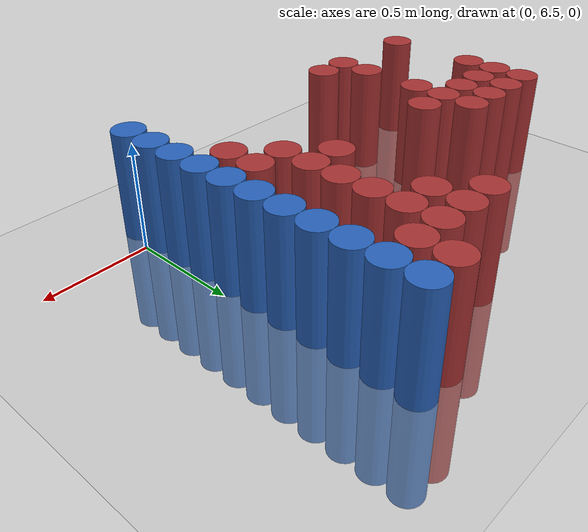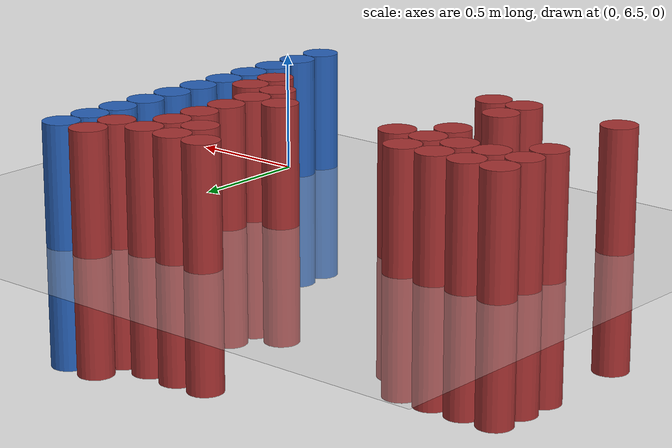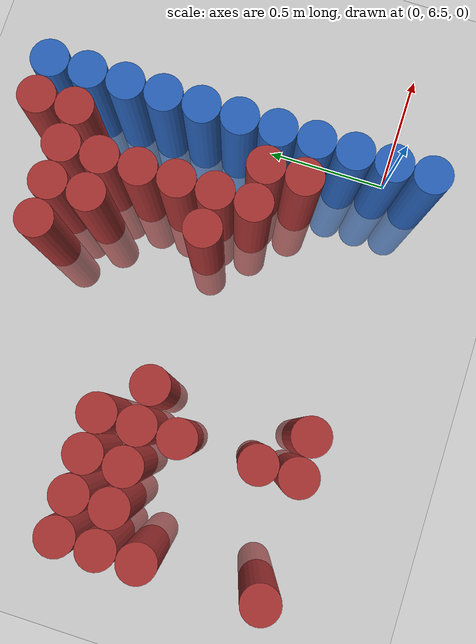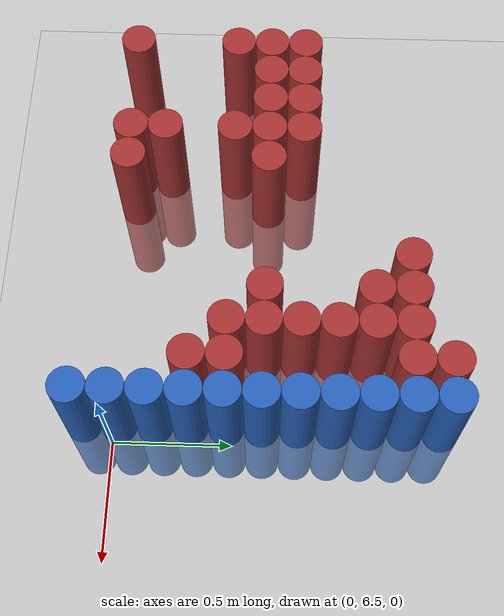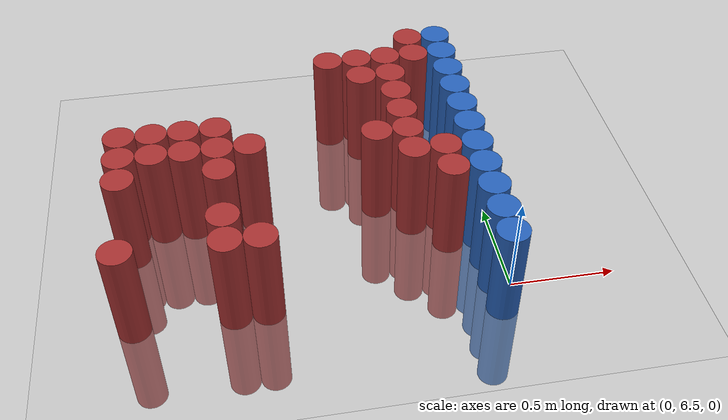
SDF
<sdf version="1.6">
 <world name="default">
  <model name="ground_plane">
   <static>1</static>
   <link name="link">
    <collision name="collision">
     <geometry><plane><normal>0 0 1</normal><size>100 100</size></plane></geometry>
     <surface><friction><ode><mu>100</mu><mu2>50</mu2></ode></friction></surface>
    </collision>
    <visual name="visual">
     <cast_shadows>0</cast_shadows>
     <geometry><plane><normal>0 0 1</normal><size>100 100</size></plane></geometry>
     <material>
      <script><uri>file://media/materials/scripts/gazebo.material</uri><name>Gazebo/Grey</name></script>
     </material>
    </visual>
   </link>
  </model>
  <model name="unit_cylinder_216">
   <static>1</static>
   <pose>-1.725000 6.525000 0.000000 0.000000 0.000000 0.000000</pose>
   <link name="link">
    <inertial>
     <mass>1</mass>
     <inertia><ixx>0.145833</ixx><ixy>0</ixy><ixz>0</ixz><iyy>0.145833</iyy><iyz>0</iyz><izz>0.125</izz></inertia>
    </inertial>
    <collision name="collision">
     <geometry><cylinder><radius>0.075000</radius><length>1</length></cylinder></geometry>
    </collision>
    <visual name="visual">
     <geometry><cylinder><radius>0.075000</radius><length>1</length></cylinder></geometry>
     <material>
      <ambient>0.648000 0.192000 0.192000 1</ambient>
      <diffuse>0.648000 0.192000 0.192000 1</diffuse>
     </material>
     <material>
      <script><name>Gazebo/Grey</name><uri>file://media/materials/scripts/gazebo.material</uri></script>
     </material>
    </visual>
    <sensor name="sensor_contact" type="contact"><contact><collision>collision</collision></contact></sensor>
   </link>
   <plugin filename="gz-sim-touchplugin-system" name="gz::sim::systems::TouchPlugin">
    <target>robot</target>
    <namespace>robot</namespace>
    <time>0.001</time>
    <enabled>true</enabled>
   </plugin>
  </model>
  <model name="unit_cylinder_217">
   <static>1</static>
   <pose>-1.725000 6.975000 0.000000 0.000000 0.000000 0.000000</pose>
   <link name="link">
    <inertial>
     <mass>1</mass>
     <inertia><ixx>0.145833</ixx><ixy>0</ixy><ixz>0</ixz><iyy>0.145833</iyy><iyz>0</iyz><izz>0.125</izz></inertia>
    </inertial>
    <collision name="collision">
     <geometry><cylinder><radius>0.075000</radius><length>1</length></cylinder></geometry>
    </collision>
    <visual name="visual">
     <geometry><cylinder><radius>0.075000</radius><length>1</length></cylinder></geometry>
     <material>
      <ambient>0.648000 0.192000 0.192000 1</ambient>
      <diffuse>0.648000 0.192000 0.192000 1</diffuse>
     </material>
     <material>
      <script><name>Gazebo/Grey</name><uri>file://media/materials/scripts/gazebo.material</uri></script>
     </material>
    </visual>
    <sensor name="sensor_contact" type="contact"><contact><collision>collision</collision></contact></sensor>
   </link>
   <plugin filename="gz-sim-touchplugin-system" name="gz::sim::systems::TouchPlugin">
    <target>robot</target>
    <namespace>robot</namespace>
    <time>0.001</time>
    <enabled>true</enabled>
   </plugin>
  </model>
  <model name="unit_cylinder_218">
   <static>1</static>
   <pose>-1.725000 7.125000 0.000000 0.000000 0.000000 0.000000</pose>
   <link name="link">
    <inertial>
     <mass>1</mass>
     <inertia><ixx>0.145833</ixx><ixy>0</ixy><ixz>0</ixz><iyy>0.145833</iyy><iyz>0</iyz><izz>0.125</izz></inertia>
    </inertial>
    <collision name="collision">
     <geometry><cylinder><radius>0.075000</radius><length>1</length></cylinder></geometry>
    </collision>
    <visual name="visual">
     <geometry><cylinder><radius>0.075000</radius><length>1</length></cylinder></geometry>
     <material>
      <ambient>0.648000 0.192000 0.192000 1</ambient>
      <diffuse>0.648000 0.192000 0.192000 1</diffuse>
     </material>
     <material>
      <script><name>Gazebo/Grey</name><uri>file://media/materials/scripts/gazebo.material</uri></script>
     </material>
    </visual>
    <sensor name="sensor_contact" type="contact"><contact><collision>collision</collision></contact></sensor>
   </link>
   <plugin filename="gz-sim-touchplugin-system" name="gz::sim::systems::TouchPlugin">
    <target>robot</target>
    <namespace>robot</namespace>
    <time>0.001</time>
    <enabled>true</enabled>
   </plugin>
  </model>
  <model name="unit_cylinder_219">
   <static>1</static>
   <pose>-1.725000 7.275000 0.000000 0.000000 0.000000 0.000000</pose>
   <link name="link">
    <inertial>
     <mass>1</mass>
     <inertia><ixx>0.145833</ixx><ixy>0</ixy><ixz>0</ixz><iyy>0.145833</iyy><iyz>0</iyz><izz>0.125</izz></inertia>
    </inertial>
    <collision name="collision">
     <geometry><cylinder><radius>0.075000</radius><length>1</length></cylinder></geometry>
    </collision>
    <visual name="visual">
     <geometry><cylinder><radius>0.075000</radius><length>1</length></cylinder></geometry>
     <material>
      <ambient>0.648000 0.192000 0.192000 1</ambient>
      <diffuse>0.648000 0.192000 0.192000 1</diffuse>
     </material>
     <material>
      <script><name>Gazebo/Grey</name><uri>file://media/materials/scripts/gazebo.material</uri></script>
     </material>
    </visual>
    <sensor name="sensor_contact" type="contact"><contact><collision>collision</collision></contact></sensor>
   </link>
   <plugin filename="gz-sim-touchplugin-system" name="gz::sim::systems::TouchPlugin">
    <target>robot</target>
    <namespace>robot</namespace>
    <time>0.001</time>
    <enabled>true</enabled>
   </plugin>
  </model>
  <model name="unit_cylinder_220">
   <static>1</static>
   <pose>-1.575000 7.125000 0.000000 0.000000 0.000000 0.000000</pose>
   <link name="link">
    <inertial>
     <mass>1</mass>
     <inertia><ixx>0.145833</ixx><ixy>0</ixy><ixz>0</ixz><iyy>0.145833</iyy><iyz>0</iyz><izz>0.125</izz></inertia>
    </inertial>
    <collision name="collision">
     <geometry><cylinder><radius>0.075000</radius><length>1</length></cylinder></geometry>
    </collision>
    <visual name="visual">
     <geometry><cylinder><radius>0.075000</radius><length>1</length></cylinder></geometry>
     <material>
      <ambient>0.648000 0.192000 0.192000 1</ambient>
      <diffuse>0.648000 0.192000 0.192000 1</diffuse>
     </material>
     <material>
      <script><name>Gazebo/Grey</name><uri>file://media/materials/scripts/gazebo.material</uri></script>
     </material>
    </visual>
    <sensor name="sensor_contact" type="contact"><contact><collision>collision</collision></contact></sensor>
   </link>
   <plugin filename="gz-sim-touchplugin-system" name="gz::sim::systems::TouchPlugin">
    <target>robot</target>
    <namespace>robot</namespace>
    <time>0.001</time>
    <enabled>true</enabled>
   </plugin>
  </model>
  <model name="unit_cylinder_221">
   <static>1</static>
   <pose>-1.575000 7.275000 0.000000 0.000000 0.000000 0.000000</pose>
   <link name="link">
    <inertial>
     <mass>1</mass>
     <inertia><ixx>0.145833</ixx><ixy>0</ixy><ixz>0</ixz><iyy>0.145833</iyy><iyz>0</iyz><izz>0.125</izz></inertia>
    </inertial>
    <collision name="collision">
     <geometry><cylinder><radius>0.075000</radius><length>1</length></cylinder></geometry>
    </collision>
    <visual name="visual">
     <geometry><cylinder><radius>0.075000</radius><length>1</length></cylinder></geometry>
     <material>
      <ambient>0.648000 0.192000 0.192000 1</ambient>
      <diffuse>0.648000 0.192000 0.192000 1</diffuse>
     </material>
     <material>
      <script><name>Gazebo/Grey</name><uri>file://media/materials/scripts/gazebo.material</uri></script>
     </material>
    </visual>
    <sensor name="sensor_contact" type="contact"><contact><collision>collision</collision></contact></sensor>
   </link>
   <plugin filename="gz-sim-touchplugin-system" name="gz::sim::systems::TouchPlugin">
    <target>robot</target>
    <namespace>robot</namespace>
    <time>0.001</time>
    <enabled>true</enabled>
   </plugin>
  </model>
  <model name="unit_cylinder_222">
   <static>1</static>
   <pose>-1.425000 7.125000 0.000000 0.000000 0.000000 0.000000</pose>
   <link name="link">
    <inertial>
     <mass>1</mass>
     <inertia><ixx>0.145833</ixx><ixy>0</ixy><ixz>0</ixz><iyy>0.145833</iyy><iyz>0</iyz><izz>0.125</izz></inertia>
    </inertial>
    <collision name="collision">
     <geometry><cylinder><radius>0.075000</radius><length>1</length></cylinder></geometry>
    </collision>
    <visual name="visual">
     <geometry><cylinder><radius>0.075000</radius><length>1</length></cylinder></geometry>
     <material>
      <ambient>0.648000 0.192000 0.192000 1</ambient>
      <diffuse>0.648000 0.192000 0.192000 1</diffuse>
     </material>
     <material>
      <script><name>Gazebo/Grey</name><uri>file://media/materials/scripts/gazebo.material</uri></script>
     </material>
    </visual>
    <sensor name="sensor_contact" type="contact"><contact><collision>collision</collision></contact></sensor>
   </link>
   <plugin filename="gz-sim-touchplugin-system" name="gz::sim::systems::TouchPlugin">
    <target>robot</target>
    <namespace>robot</namespace>
    <time>0.001</time>
    <enabled>true</enabled>
   </plugin>
  </model>
  <model name="unit_cylinder_223">
   <static>1</static>
   <pose>-1.425000 7.275000 0.000000 0.000000 0.000000 0.000000</pose>
   <link name="link">
    <inertial>
     <mass>1</mass>
     <inertia><ixx>0.145833</ixx><ixy>0</ixy><ixz>0</ixz><iyy>0.145833</iyy><iyz>0</iyz><izz>0.125</izz></inertia>
    </inertial>
    <collision name="collision">
     <geometry><cylinder><radius>0.075000</radius><length>1</length></cylinder></geometry>
    </collision>
    <visual name="visual">
     <geometry><cylinder><radius>0.075000</radius><length>1</length></cylinder></geometry>
     <material>
      <ambient>0.648000 0.192000 0.192000 1</ambient>
      <diffuse>0.648000 0.192000 0.192000 1</diffuse>
     </material>
     <material>
      <script><name>Gazebo/Grey</name><uri>file://media/materials/scripts/gazebo.material</uri></script>
     </material>
    </visual>
    <sensor name="sensor_contact" type="contact"><contact><collision>collision</collision></contact></sensor>
   </link>
   <plugin filename="gz-sim-touchplugin-system" name="gz::sim::systems::TouchPlugin">
    <target>robot</target>
    <namespace>robot</namespace>
    <time>0.001</time>
    <enabled>true</enabled>
   </plugin>
  </model>
  <model name="unit_cylinder_229">
   <static>1</static>
   <pose>-1.275000 6.525000 0.000000 0.000000 0.000000 0.000000</pose>
   <link name="link">
    <inertial>
     <mass>1</mass>
     <inertia><ixx>0.145833</ixx><ixy>0</ixy><ixz>0</ixz><iyy>0.145833</iyy><iyz>0</iyz><izz>0.125</izz></inertia>
    </inertial>
    <collision name="collision">
     <geometry><cylinder><radius>0.075000</radius><length>1</length></cylinder></geometry>
    </collision>
    <visual name="visual">
     <geometry><cylinder><radius>0.075000</radius><length>1</length></cylinder></geometry>
     <material>
      <ambient>0.648000 0.192000 0.192000 1</ambient>
      <diffuse>0.648000 0.192000 0.192000 1</diffuse>
     </material>
     <material>
      <script><name>Gazebo/Grey</name><uri>file://media/materials/scripts/gazebo.material</uri></script>
     </material>
    </visual>
    <sensor name="sensor_contact" type="contact"><contact><collision>collision</collision></contact></sensor>
   </link>
   <plugin filename="gz-sim-touchplugin-system" name="gz::sim::systems::TouchPlugin">
    <target>robot</target>
    <namespace>robot</namespace>
    <time>0.001</time>
    <enabled>true</enabled>
   </plugin>
  </model>
  <model name="unit_cylinder_230">
   <static>1</static>
   <pose>-1.275000 6.675000 0.000000 0.000000 0.000000 0.000000</pose>
   <link name="link">
    <inertial>
     <mass>1</mass>
     <inertia><ixx>0.145833</ixx><ixy>0</ixy><ixz>0</ixz><iyy>0.145833</iyy><iyz>0</iyz><izz>0.125</izz></inertia>
    </inertial>
    <collision name="collision">
     <geometry><cylinder><radius>0.075000</radius><length>1</length></cylinder></geometry>
    </collision>
    <visual name="visual">
     <geometry><cylinder><radius>0.075000</radius><length>1</length></cylinder></geometry>
     <material>
      <ambient>0.648000 0.192000 0.192000 1</ambient>
      <diffuse>0.648000 0.192000 0.192000 1</diffuse>
     </material>
     <material>
      <script><name>Gazebo/Grey</name><uri>file://media/materials/scripts/gazebo.material</uri></script>
     </material>
    </visual>
    <sensor name="sensor_contact" type="contact"><contact><collision>collision</collision></contact></sensor>
   </link>
   <plugin filename="gz-sim-touchplugin-system" name="gz::sim::systems::TouchPlugin">
    <target>robot</target>
    <namespace>robot</namespace>
    <time>0.001</time>
    <enabled>true</enabled>
   </plugin>
  </model>
  <model name="unit_cylinder_231">
   <static>1</static>
   <pose>-1.275000 6.975000 0.000000 0.000000 0.000000 0.000000</pose>
   <link name="link">
    <inertial>
     <mass>1</mass>
     <inertia><ixx>0.145833</ixx><ixy>0</ixy><ixz>0</ixz><iyy>0.145833</iyy><iyz>0</iyz><izz>0.125</izz></inertia>
    </inertial>
    <collision name="collision">
     <geometry><cylinder><radius>0.075000</radius><length>1</length></cylinder></geometry>
    </collision>
    <visual name="visual">
     <geometry><cylinder><radius>0.075000</radius><length>1</length></cylinder></geometry>
     <material>
      <ambient>0.648000 0.192000 0.192000 1</ambient>
      <diffuse>0.648000 0.192000 0.192000 1</diffuse>
     </material>
     <material>
      <script><name>Gazebo/Grey</name><uri>file://media/materials/scripts/gazebo.material</uri></script>
     </material>
    </visual>
    <sensor name="sensor_contact" type="contact"><contact><collision>collision</collision></contact></sensor>
   </link>
   <plugin filename="gz-sim-touchplugin-system" name="gz::sim::systems::TouchPlugin">
    <target>robot</target>
    <namespace>robot</namespace>
    <time>0.001</time>
    <enabled>true</enabled>
   </plugin>
  </model>
  <model name="unit_cylinder_232">
   <static>1</static>
   <pose>-1.275000 7.125000 0.000000 0.000000 0.000000 0.000000</pose>
   <link name="link">
    <inertial>
     <mass>1</mass>
     <inertia><ixx>0.145833</ixx><ixy>0</ixy><ixz>0</ixz><iyy>0.145833</iyy><iyz>0</iyz><izz>0.125</izz></inertia>
    </inertial>
    <collision name="collision">
     <geometry><cylinder><radius>0.075000</radius><length>1</length></cylinder></geometry>
    </collision>
    <visual name="visual">
     <geometry><cylinder><radius>0.075000</radius><length>1</length></cylinder></geometry>
     <material>
      <ambient>0.648000 0.192000 0.192000 1</ambient>
      <diffuse>0.648000 0.192000 0.192000 1</diffuse>
     </material>
     <material>
      <script><name>Gazebo/Grey</name><uri>file://media/materials/scripts/gazebo.material</uri></script>
     </material>
    </visual>
    <sensor name="sensor_contact" type="contact"><contact><collision>collision</collision></contact></sensor>
   </link>
   <plugin filename="gz-sim-touchplugin-system" name="gz::sim::systems::TouchPlugin">
    <target>robot</target>
    <namespace>robot</namespace>
    <time>0.001</time>
    <enabled>true</enabled>
   </plugin>
  </model>
  <model name="unit_cylinder_233">
   <static>1</static>
   <pose>-1.275000 7.275000 0.000000 0.000000 0.000000 0.000000</pose>
   <link name="link">
    <inertial>
     <mass>1</mass>
     <inertia><ixx>0.145833</ixx><ixy>0</ixy><ixz>0</ixz><iyy>0.145833</iyy><iyz>0</iyz><izz>0.125</izz></inertia>
    </inertial>
    <collision name="collision">
     <geometry><cylinder><radius>0.075000</radius><length>1</length></cylinder></geometry>
    </collision>
    <visual name="visual">
     <geometry><cylinder><radius>0.075000</radius><length>1</length></cylinder></geometry>
     <material>
      <ambient>0.648000 0.192000 0.192000 1</ambient>
      <diffuse>0.648000 0.192000 0.192000 1</diffuse>
     </material>
     <material>
      <script><name>Gazebo/Grey</name><uri>file://media/materials/scripts/gazebo.material</uri></script>
     </material>
    </visual>
    <sensor name="sensor_contact" type="contact"><contact><collision>collision</collision></contact></sensor>
   </link>
   <plugin filename="gz-sim-touchplugin-system" name="gz::sim::systems::TouchPlugin">
    <target>robot</target>
    <namespace>robot</namespace>
    <time>0.001</time>
    <enabled>true</enabled>
   </plugin>
  </model>
  <model name="unit_cylinder_241">
   <static>1</static>
   <pose>-1.125000 6.525000 0.000000 0.000000 0.000000 0.000000</pose>
   <link name="link">
    <inertial>
     <mass>1</mass>
     <inertia><ixx>0.145833</ixx><ixy>0</ixy><ixz>0</ixz><iyy>0.145833</iyy><iyz>0</iyz><izz>0.125</izz></inertia>
    </inertial>
    <collision name="collision">
     <geometry><cylinder><radius>0.075000</radius><length>1</length></cylinder></geometry>
    </collision>
    <visual name="visual">
     <geometry><cylinder><radius>0.075000</radius><length>1</length></cylinder></geometry>
     <material>
      <ambient>0.648000 0.192000 0.192000 1</ambient>
      <diffuse>0.648000 0.192000 0.192000 1</diffuse>
     </material>
     <material>
      <script><name>Gazebo/Grey</name><uri>file://media/materials/scripts/gazebo.material</uri></script>
     </material>
    </visual>
    <sensor name="sensor_contact" type="contact"><contact><collision>collision</collision></contact></sensor>
   </link>
   <plugin filename="gz-sim-touchplugin-system" name="gz::sim::systems::TouchPlugin">
    <target>robot</target>
    <namespace>robot</namespace>
    <time>0.001</time>
    <enabled>true</enabled>
   </plugin>
  </model>
  <model name="unit_cylinder_242">
   <static>1</static>
   <pose>-1.125000 7.125000 0.000000 0.000000 0.000000 0.000000</pose>
   <link name="link">
    <inertial>
     <mass>1</mass>
     <inertia><ixx>0.145833</ixx><ixy>0</ixy><ixz>0</ixz><iyy>0.145833</iyy><iyz>0</iyz><izz>0.125</izz></inertia>
    </inertial>
    <collision name="collision">
     <geometry><cylinder><radius>0.075000</radius><length>1</length></cylinder></geometry>
    </collision>
    <visual name="visual">
     <geometry><cylinder><radius>0.075000</radius><length>1</length></cylinder></geometry>
     <material>
      <ambient>0.648000 0.192000 0.192000 1</ambient>
      <diffuse>0.648000 0.192000 0.192000 1</diffuse>
     </material>
     <material>
      <script><name>Gazebo/Grey</name><uri>file://media/materials/scripts/gazebo.material</uri></script>
     </material>
    </visual>
    <sensor name="sensor_contact" type="contact"><contact><collision>collision</collision></contact></sensor>
   </link>
   <plugin filename="gz-sim-touchplugin-system" name="gz::sim::systems::TouchPlugin">
    <target>robot</target>
    <namespace>robot</namespace>
    <time>0.001</time>
    <enabled>true</enabled>
   </plugin>
  </model>
  <model name="unit_cylinder_253">
   <static>1</static>
   <pose>-0.675000 7.725000 0.000000 0.000000 0.000000 0.000000</pose>
   <link name="link">
    <inertial>
     <mass>1</mass>
     <inertia><ixx>0.145833</ixx><ixy>0</ixy><ixz>0</ixz><iyy>0.145833</iyy><iyz>0</iyz><izz>0.125</izz></inertia>
    </inertial>
    <collision name="collision">
     <geometry><cylinder><radius>0.075000</radius><length>1</length></cylinder></geometry>
    </collision>
    <visual name="visual">
     <geometry><cylinder><radius>0.075000</radius><length>1</length></cylinder></geometry>
     <material>
      <ambient>0.648000 0.192000 0.192000 1</ambient>
      <diffuse>0.648000 0.192000 0.192000 1</diffuse>
     </material>
     <material>
      <script><name>Gazebo/Grey</name><uri>file://media/materials/scripts/gazebo.material</uri></script>
     </material>
    </visual>
    <sensor name="sensor_contact" type="contact"><contact><collision>collision</collision></contact></sensor>
   </link>
   <plugin filename="gz-sim-touchplugin-system" name="gz::sim::systems::TouchPlugin">
    <target>robot</target>
    <namespace>robot</namespace>
    <time>0.001</time>
    <enabled>true</enabled>
   </plugin>
  </model>
  <model name="unit_cylinder_256">
   <static>1</static>
   <pose>-0.525000 7.125000 0.000000 0.000000 0.000000 0.000000</pose>
   <link name="link">
    <inertial>
     <mass>1</mass>
     <inertia><ixx>0.145833</ixx><ixy>0</ixy><ixz>0</ixz><iyy>0.145833</iyy><iyz>0</iyz><izz>0.125</izz></inertia>
    </inertial>
    <collision name="collision">
     <geometry><cylinder><radius>0.075000</radius><length>1</length></cylinder></geometry>
    </collision>
    <visual name="visual">
     <geometry><cylinder><radius>0.075000</radius><length>1</length></cylinder></geometry>
     <material>
      <ambient>0.648000 0.192000 0.192000 1</ambient>
      <diffuse>0.648000 0.192000 0.192000 1</diffuse>
     </material>
     <material>
      <script><name>Gazebo/Grey</name><uri>file://media/materials/scripts/gazebo.material</uri></script>
     </material>
    </visual>
    <sensor name="sensor_contact" type="contact"><contact><collision>collision</collision></contact></sensor>
   </link>
   <plugin filename="gz-sim-touchplugin-system" name="gz::sim::systems::TouchPlugin">
    <target>robot</target>
    <namespace>robot</namespace>
    <time>0.001</time>
    <enabled>true</enabled>
   </plugin>
  </model>
  <model name="unit_cylinder_257">
   <static>1</static>
   <pose>-0.525000 7.575000 0.000000 0.000000 0.000000 0.000000</pose>
   <link name="link">
    <inertial>
     <mass>1</mass>
     <inertia><ixx>0.145833</ixx><ixy>0</ixy><ixz>0</ixz><iyy>0.145833</iyy><iyz>0</iyz><izz>0.125</izz></inertia>
    </inertial>
    <collision name="collision">
     <geometry><cylinder><radius>0.075000</radius><length>1</length></cylinder></geometry>
    </collision>
    <visual name="visual">
     <geometry><cylinder><radius>0.075000</radius><length>1</length></cylinder></geometry>
     <material>
      <ambient>0.648000 0.192000 0.192000 1</ambient>
      <diffuse>0.648000 0.192000 0.192000 1</diffuse>
     </material>
     <material>
      <script><name>Gazebo/Grey</name><uri>file://media/materials/scripts/gazebo.material</uri></script>
     </material>
    </visual>
    <sensor name="sensor_contact" type="contact"><contact><collision>collision</collision></contact></sensor>
   </link>
   <plugin filename="gz-sim-touchplugin-system" name="gz::sim::systems::TouchPlugin">
    <target>robot</target>
    <namespace>robot</namespace>
    <time>0.001</time>
    <enabled>true</enabled>
   </plugin>
  </model>
  <model name="unit_cylinder_258">
   <static>1</static>
   <pose>-0.525000 7.725000 0.000000 0.000000 0.000000 0.000000</pose>
   <link name="link">
    <inertial>
     <mass>1</mass>
     <inertia><ixx>0.145833</ixx><ixy>0</ixy><ixz>0</ixz><iyy>0.145833</iyy><iyz>0</iyz><izz>0.125</izz></inertia>
    </inertial>
    <collision name="collision">
     <geometry><cylinder><radius>0.075000</radius><length>1</length></cylinder></geometry>
    </collision>
    <visual name="visual">
     <geometry><cylinder><radius>0.075000</radius><length>1</length></cylinder></geometry>
     <material>
      <ambient>0.648000 0.192000 0.192000 1</ambient>
      <diffuse>0.648000 0.192000 0.192000 1</diffuse>
     </material>
     <material>
      <script><name>Gazebo/Grey</name><uri>file://media/materials/scripts/gazebo.material</uri></script>
     </material>
    </visual>
    <sensor name="sensor_contact" type="contact"><contact><collision>collision</collision></contact></sensor>
   </link>
   <plugin filename="gz-sim-touchplugin-system" name="gz::sim::systems::TouchPlugin">
    <target>robot</target>
    <namespace>robot</namespace>
    <time>0.001</time>
    <enabled>true</enabled>
   </plugin>
  </model>
  <model name="unit_cylinder_262">
   <static>1</static>
   <pose>-0.375000 6.975000 0.000000 0.000000 0.000000 0.000000</pose>
   <link name="link">
    <inertial>
     <mass>1</mass>
     <inertia><ixx>0.145833</ixx><ixy>0</ixy><ixz>0</ixz><iyy>0.145833</iyy><iyz>0</iyz><izz>0.125</izz></inertia>
    </inertial>
    <collision name="collision">
     <geometry><cylinder><radius>0.075000</radius><length>1</length></cylinder></geometry>
    </collision>
    <visual name="visual">
     <geometry><cylinder><radius>0.075000</radius><length>1</length></cylinder></geometry>
     <material>
      <ambient>0.648000 0.192000 0.192000 1</ambient>
      <diffuse>0.648000 0.192000 0.192000 1</diffuse>
     </material>
     <material>
      <script><name>Gazebo/Grey</name><uri>file://media/materials/scripts/gazebo.material</uri></script>
     </material>
    </visual>
    <sensor name="sensor_contact" type="contact"><contact><collision>collision</collision></contact></sensor>
   </link>
   <plugin filename="gz-sim-touchplugin-system" name="gz::sim::systems::TouchPlugin">
    <target>robot</target>
    <namespace>robot</namespace>
    <time>0.001</time>
    <enabled>true</enabled>
   </plugin>
  </model>
  <model name="unit_cylinder_263">
   <static>1</static>
   <pose>-0.375000 7.125000 0.000000 0.000000 0.000000 0.000000</pose>
   <link name="link">
    <inertial>
     <mass>1</mass>
     <inertia><ixx>0.145833</ixx><ixy>0</ixy><ixz>0</ixz><iyy>0.145833</iyy><iyz>0</iyz><izz>0.125</izz></inertia>
    </inertial>
    <collision name="collision">
     <geometry><cylinder><radius>0.075000</radius><length>1</length></cylinder></geometry>
    </collision>
    <visual name="visual">
     <geometry><cylinder><radius>0.075000</radius><length>1</length></cylinder></geometry>
     <material>
      <ambient>0.648000 0.192000 0.192000 1</ambient>
      <diffuse>0.648000 0.192000 0.192000 1</diffuse>
     </material>
     <material>
      <script><name>Gazebo/Grey</name><uri>file://media/materials/scripts/gazebo.material</uri></script>
     </material>
    </visual>
    <sensor name="sensor_contact" type="contact"><contact><collision>collision</collision></contact></sensor>
   </link>
   <plugin filename="gz-sim-touchplugin-system" name="gz::sim::systems::TouchPlugin">
    <target>robot</target>
    <namespace>robot</namespace>
    <time>0.001</time>
    <enabled>true</enabled>
   </plugin>
  </model>
  <model name="unit_cylinder_264">
   <static>1</static>
   <pose>-0.375000 7.275000 0.000000 0.000000 0.000000 0.000000</pose>
   <link name="link">
    <inertial>
     <mass>1</mass>
     <inertia><ixx>0.145833</ixx><ixy>0</ixy><ixz>0</ixz><iyy>0.145833</iyy><iyz>0</iyz><izz>0.125</izz></inertia>
    </inertial>
    <collision name="collision">
     <geometry><cylinder><radius>0.075000</radius><length>1</length></cylinder></geometry>
    </collision>
    <visual name="visual">
     <geometry><cylinder><radius>0.075000</radius><length>1</length></cylinder></geometry>
     <material>
      <ambient>0.648000 0.192000 0.192000 1</ambient>
      <diffuse>0.648000 0.192000 0.192000 1</diffuse>
     </material>
     <material>
      <script><name>Gazebo/Grey</name><uri>file://media/materials/scripts/gazebo.material</uri></script>
     </material>
    </visual>
    <sensor name="sensor_contact" type="contact"><contact><collision>collision</collision></contact></sensor>
   </link>
   <plugin filename="gz-sim-touchplugin-system" name="gz::sim::systems::TouchPlugin">
    <target>robot</target>
    <namespace>robot</namespace>
    <time>0.001</time>
    <enabled>true</enabled>
   </plugin>
  </model>
  <model name="unit_cylinder_265">
   <static>1</static>
   <pose>-0.375000 7.425000 0.000000 0.000000 0.000000 0.000000</pose>
   <link name="link">
    <inertial>
     <mass>1</mass>
     <inertia><ixx>0.145833</ixx><ixy>0</ixy><ixz>0</ixz><iyy>0.145833</iyy><iyz>0</iyz><izz>0.125</izz></inertia>
    </inertial>
    <collision name="collision">
     <geometry><cylinder><radius>0.075000</radius><length>1</length></cylinder></geometry>
    </collision>
    <visual name="visual">
     <geometry><cylinder><radius>0.075000</radius><length>1</length></cylinder></geometry>
     <material>
      <ambient>0.648000 0.192000 0.192000 1</ambient>
      <diffuse>0.648000 0.192000 0.192000 1</diffuse>
     </material>
     <material>
      <script><name>Gazebo/Grey</name><uri>file://media/materials/scripts/gazebo.material</uri></script>
     </material>
    </visual>
    <sensor name="sensor_contact" type="contact"><contact><collision>collision</collision></contact></sensor>
   </link>
   <plugin filename="gz-sim-touchplugin-system" name="gz::sim::systems::TouchPlugin">
    <target>robot</target>
    <namespace>robot</namespace>
    <time>0.001</time>
    <enabled>true</enabled>
   </plugin>
  </model>
  <model name="unit_cylinder_266">
   <static>1</static>
   <pose>-0.375000 7.575000 0.000000 0.000000 0.000000 0.000000</pose>
   <link name="link">
    <inertial>
     <mass>1</mass>
     <inertia><ixx>0.145833</ixx><ixy>0</ixy><ixz>0</ixz><iyy>0.145833</iyy><iyz>0</iyz><izz>0.125</izz></inertia>
    </inertial>
    <collision name="collision">
     <geometry><cylinder><radius>0.075000</radius><length>1</length></cylinder></geometry>
    </collision>
    <visual name="visual">
     <geometry><cylinder><radius>0.075000</radius><length>1</length></cylinder></geometry>
     <material>
      <ambient>0.648000 0.192000 0.192000 1</ambient>
      <diffuse>0.648000 0.192000 0.192000 1</diffuse>
     </material>
     <material>
      <script><name>Gazebo/Grey</name><uri>file://media/materials/scripts/gazebo.material</uri></script>
     </material>
    </visual>
    <sensor name="sensor_contact" type="contact"><contact><collision>collision</collision></contact></sensor>
   </link>
   <plugin filename="gz-sim-touchplugin-system" name="gz::sim::systems::TouchPlugin">
    <target>robot</target>
    <namespace>robot</namespace>
    <time>0.001</time>
    <enabled>true</enabled>
   </plugin>
  </model>
  <model name="unit_cylinder_267">
   <static>1</static>
   <pose>-0.375000 7.725000 0.000000 0.000000 0.000000 0.000000</pose>
   <link name="link">
    <inertial>
     <mass>1</mass>
     <inertia><ixx>0.145833</ixx><ixy>0</ixy><ixz>0</ixz><iyy>0.145833</iyy><iyz>0</iyz><izz>0.125</izz></inertia>
    </inertial>
    <collision name="collision">
     <geometry><cylinder><radius>0.075000</radius><length>1</length></cylinder></geometry>
    </collision>
    <visual name="visual">
     <geometry><cylinder><radius>0.075000</radius><length>1</length></cylinder></geometry>
     <material>
      <ambient>0.648000 0.192000 0.192000 1</ambient>
      <diffuse>0.648000 0.192000 0.192000 1</diffuse>
     </material>
     <material>
      <script><name>Gazebo/Grey</name><uri>file://media/materials/scripts/gazebo.material</uri></script>
     </material>
    </visual>
    <sensor name="sensor_contact" type="contact"><contact><collision>collision</collision></contact></sensor>
   </link>
   <plugin filename="gz-sim-touchplugin-system" name="gz::sim::systems::TouchPlugin">
    <target>robot</target>
    <namespace>robot</namespace>
    <time>0.001</time>
    <enabled>true</enabled>
   </plugin>
  </model>
  <model name="unit_cylinder_280">
   <static>1</static>
   <pose>-0.225000 6.825000 0.000000 0.000000 0.000000 0.000000</pose>
   <link name="link">
    <inertial>
     <mass>1</mass>
     <inertia><ixx>0.145833</ixx><ixy>0</ixy><ixz>0</ixz><iyy>0.145833</iyy><iyz>0</iyz><izz>0.125</izz></inertia>
    </inertial>
    <collision name="collision">
     <geometry><cylinder><radius>0.075000</radius><length>1</length></cylinder></geometry>
    </collision>
    <visual name="visual">
     <geometry><cylinder><radius>0.075000</radius><length>1</length></cylinder></geometry>
     <material>
      <ambient>0.648000 0.192000 0.192000 1</ambient>
      <diffuse>0.648000 0.192000 0.192000 1</diffuse>
     </material>
     <material>
      <script><name>Gazebo/Grey</name><uri>file://media/materials/scripts/gazebo.material</uri></script>
     </material>
    </visual>
    <sensor name="sensor_contact" type="contact"><contact><collision>collision</collision></contact></sensor>
   </link>
   <plugin filename="gz-sim-touchplugin-system" name="gz::sim::systems::TouchPlugin">
    <target>robot</target>
    <namespace>robot</namespace>
    <time>0.001</time>
    <enabled>true</enabled>
   </plugin>
  </model>
  <model name="unit_cylinder_281">
   <static>1</static>
   <pose>-0.225000 6.975000 0.000000 0.000000 0.000000 0.000000</pose>
   <link name="link">
    <inertial>
     <mass>1</mass>
     <inertia><ixx>0.145833</ixx><ixy>0</ixy><ixz>0</ixz><iyy>0.145833</iyy><iyz>0</iyz><izz>0.125</izz></inertia>
    </inertial>
    <collision name="collision">
     <geometry><cylinder><radius>0.075000</radius><length>1</length></cylinder></geometry>
    </collision>
    <visual name="visual">
     <geometry><cylinder><radius>0.075000</radius><length>1</length></cylinder></geometry>
     <material>
      <ambient>0.648000 0.192000 0.192000 1</ambient>
      <diffuse>0.648000 0.192000 0.192000 1</diffuse>
     </material>
     <material>
      <script><name>Gazebo/Grey</name><uri>file://media/materials/scripts/gazebo.material</uri></script>
     </material>
    </visual>
    <sensor name="sensor_contact" type="contact"><contact><collision>collision</collision></contact></sensor>
   </link>
   <plugin filename="gz-sim-touchplugin-system" name="gz::sim::systems::TouchPlugin">
    <target>robot</target>
    <namespace>robot</namespace>
    <time>0.001</time>
    <enabled>true</enabled>
   </plugin>
  </model>
  <model name="unit_cylinder_282">
   <static>1</static>
   <pose>-0.225000 7.725000 0.000000 0.000000 0.000000 0.000000</pose>
   <link name="link">
    <inertial>
     <mass>1</mass>
     <inertia><ixx>0.145833</ixx><ixy>0</ixy><ixz>0</ixz><iyy>0.145833</iyy><iyz>0</iyz><izz>0.125</izz></inertia>
    </inertial>
    <collision name="collision">
     <geometry><cylinder><radius>0.075000</radius><length>1</length></cylinder></geometry>
    </collision>
    <visual name="visual">
     <geometry><cylinder><radius>0.075000</radius><length>1</length></cylinder></geometry>
     <material>
      <ambient>0.648000 0.192000 0.192000 1</ambient>
      <diffuse>0.648000 0.192000 0.192000 1</diffuse>
     </material>
     <material>
      <script><name>Gazebo/Grey</name><uri>file://media/materials/scripts/gazebo.material</uri></script>
     </material>
    </visual>
    <sensor name="sensor_contact" type="contact"><contact><collision>collision</collision></contact></sensor>
   </link>
   <plugin filename="gz-sim-touchplugin-system" name="gz::sim::systems::TouchPlugin">
    <target>robot</target>
    <namespace>robot</namespace>
    <time>0.001</time>
    <enabled>true</enabled>
   </plugin>
  </model>
  <model name="unit_cylinder_283">
   <static>1</static>
   <pose>-0.225000 7.875000 0.000000 0.000000 0.000000 0.000000</pose>
   <link name="link">
    <inertial>
     <mass>1</mass>
     <inertia><ixx>0.145833</ixx><ixy>0</ixy><ixz>0</ixz><iyy>0.145833</iyy><iyz>0</iyz><izz>0.125</izz></inertia>
    </inertial>
    <collision name="collision">
     <geometry><cylinder><radius>0.075000</radius><length>1</length></cylinder></geometry>
    </collision>
    <visual name="visual">
     <geometry><cylinder><radius>0.075000</radius><length>1</length></cylinder></geometry>
     <material>
      <ambient>0.648000 0.192000 0.192000 1</ambient>
      <diffuse>0.648000 0.192000 0.192000 1</diffuse>
     </material>
     <material>
      <script><name>Gazebo/Grey</name><uri>file://media/materials/scripts/gazebo.material</uri></script>
     </material>
    </visual>
    <sensor name="sensor_contact" type="contact"><contact><collision>collision</collision></contact></sensor>
   </link>
   <plugin filename="gz-sim-touchplugin-system" name="gz::sim::systems::TouchPlugin">
    <target>robot</target>
    <namespace>robot</namespace>
    <time>0.001</time>
    <enabled>true</enabled>
   </plugin>
  </model>
  <model name="unit_cylinder_302">
   <static>1</static>
   <pose>-0.075000 6.375000 0.000000 0.000000 0.000000 0.000000</pose>
   <link name="link">
    <inertial>
     <mass>1</mass>
     <inertia><ixx>0.145833</ixx><ixy>0</ixy><ixz>0</ixz><iyy>0.145833</iyy><iyz>0</iyz><izz>0.125</izz></inertia>
    </inertial>
    <collision name="collision">
     <geometry><cylinder><radius>0.075000</radius><length>1</length></cylinder></geometry>
    </collision>
    <visual name="visual">
     <geometry><cylinder><radius>0.075000</radius><length>1</length></cylinder></geometry>
     <material>
      <ambient>0.152000 0.379000 0.720000 1</ambient>
      <diffuse>0.152000 0.379000 0.720000 1</diffuse>
     </material>
     <material>
      <script><name>Gazebo/Grey</name><uri>file://media/materials/scripts/gazebo.material</uri></script>
     </material>
    </visual>
    <sensor name="sensor_contact" type="contact"><contact><collision>collision</collision></contact></sensor>
   </link>
   <plugin filename="gz-sim-touchplugin-system" name="gz::sim::systems::TouchPlugin">
    <target>robot</target>
    <namespace>robot</namespace>
    <time>0.001</time>
    <enabled>true</enabled>
   </plugin>
  </model>
  <model name="unit_cylinder_303">
   <static>1</static>
   <pose>-0.075000 6.525000 0.000000 0.000000 0.000000 0.000000</pose>
   <link name="link">
    <inertial>
     <mass>1</mass>
     <inertia><ixx>0.145833</ixx><ixy>0</ixy><ixz>0</ixz><iyy>0.145833</iyy><iyz>0</iyz><izz>0.125</izz></inertia>
    </inertial>
    <collision name="collision">
     <geometry><cylinder><radius>0.075000</radius><length>1</length></cylinder></geometry>
    </collision>
    <visual name="visual">
     <geometry><cylinder><radius>0.075000</radius><length>1</length></cylinder></geometry>
     <material>
      <ambient>0.152000 0.379000 0.720000 1</ambient>
      <diffuse>0.152000 0.379000 0.720000 1</diffuse>
     </material>
     <material>
      <script><name>Gazebo/Grey</name><uri>file://media/materials/scripts/gazebo.material</uri></script>
     </material>
    </visual>
    <sensor name="sensor_contact" type="contact"><contact><collision>collision</collision></contact></sensor>
   </link>
   <plugin filename="gz-sim-touchplugin-system" name="gz::sim::systems::TouchPlugin">
    <target>robot</target>
    <namespace>robot</namespace>
    <time>0.001</time>
    <enabled>true</enabled>
   </plugin>
  </model>
  <model name="unit_cylinder_304">
   <static>1</static>
   <pose>-0.075000 6.675000 0.000000 0.000000 0.000000 0.000000</pose>
   <link name="link">
    <inertial>
     <mass>1</mass>
     <inertia><ixx>0.145833</ixx><ixy>0</ixy><ixz>0</ixz><iyy>0.145833</iyy><iyz>0</iyz><izz>0.125</izz></inertia>
    </inertial>
    <collision name="collision">
     <geometry><cylinder><radius>0.075000</radius><length>1</length></cylinder></geometry>
    </collision>
    <visual name="visual">
     <geometry><cylinder><radius>0.075000</radius><length>1</length></cylinder></geometry>
     <material>
      <ambient>0.152000 0.379000 0.720000 1</ambient>
      <diffuse>0.152000 0.379000 0.720000 1</diffuse>
     </material>
     <material>
      <script><name>Gazebo/Grey</name><uri>file://media/materials/scripts/gazebo.material</uri></script>
     </material>
    </visual>
    <sensor name="sensor_contact" type="contact"><contact><collision>collision</collision></contact></sensor>
   </link>
   <plugin filename="gz-sim-touchplugin-system" name="gz::sim::systems::TouchPlugin">
    <target>robot</target>
    <namespace>robot</namespace>
    <time>0.001</time>
    <enabled>true</enabled>
   </plugin>
  </model>
  <model name="unit_cylinder_305">
   <static>1</static>
   <pose>-0.075000 6.825000 0.000000 0.000000 0.000000 0.000000</pose>
   <link name="link">
    <inertial>
     <mass>1</mass>
     <inertia><ixx>0.145833</ixx><ixy>0</ixy><ixz>0</ixz><iyy>0.145833</iyy><iyz>0</iyz><izz>0.125</izz></inertia>
    </inertial>
    <collision name="collision">
     <geometry><cylinder><radius>0.075000</radius><length>1</length></cylinder></geometry>
    </collision>
    <visual name="visual">
     <geometry><cylinder><radius>0.075000</radius><length>1</length></cylinder></geometry>
     <material>
      <ambient>0.152000 0.379000 0.720000 1</ambient>
      <diffuse>0.152000 0.379000 0.720000 1</diffuse>
     </material>
     <material>
      <script><name>Gazebo/Grey</name><uri>file://media/materials/scripts/gazebo.material</uri></script>
     </material>
    </visual>
    <sensor name="sensor_contact" type="contact"><contact><collision>collision</collision></contact></sensor>
   </link>
   <plugin filename="gz-sim-touchplugin-system" name="gz::sim::systems::TouchPlugin">
    <target>robot</target>
    <namespace>robot</namespace>
    <time>0.001</time>
    <enabled>true</enabled>
   </plugin>
  </model>
  <model name="unit_cylinder_306">
   <static>1</static>
   <pose>-0.075000 6.975000 0.000000 0.000000 0.000000 0.000000</pose>
   <link name="link">
    <inertial>
     <mass>1</mass>
     <inertia><ixx>0.145833</ixx><ixy>0</ixy><ixz>0</ixz><iyy>0.145833</iyy><iyz>0</iyz><izz>0.125</izz></inertia>
    </inertial>
    <collision name="collision">
     <geometry><cylinder><radius>0.075000</radius><length>1</length></cylinder></geometry>
    </collision>
    <visual name="visual">
     <geometry><cylinder><radius>0.075000</radius><length>1</length></cylinder></geometry>
     <material>
      <ambient>0.152000 0.379000 0.720000 1</ambient>
      <diffuse>0.152000 0.379000 0.720000 1</diffuse>
     </material>
     <material>
      <script><name>Gazebo/Grey</name><uri>file://media/materials/scripts/gazebo.material</uri></script>
     </material>
    </visual>
    <sensor name="sensor_contact" type="contact"><contact><collision>collision</collision></contact></sensor>
   </link>
   <plugin filename="gz-sim-touchplugin-system" name="gz::sim::systems::TouchPlugin">
    <target>robot</target>
    <namespace>robot</namespace>
    <time>0.001</time>
    <enabled>true</enabled>
   </plugin>
  </model>
  <model name="unit_cylinder_307">
   <static>1</static>
   <pose>-0.075000 7.125000 0.000000 0.000000 0.000000 0.000000</pose>
   <link name="link">
    <inertial>
     <mass>1</mass>
     <inertia><ixx>0.145833</ixx><ixy>0</ixy><ixz>0</ixz><iyy>0.145833</iyy><iyz>0</iyz><izz>0.125</izz></inertia>
    </inertial>
    <collision name="collision">
     <geometry><cylinder><radius>0.075000</radius><length>1</length></cylinder></geometry>
    </collision>
    <visual name="visual">
     <geometry><cylinder><radius>0.075000</radius><length>1</length></cylinder></geometry>
     <material>
      <ambient>0.152000 0.379000 0.720000 1</ambient>
      <diffuse>0.152000 0.379000 0.720000 1</diffuse>
     </material>
     <material>
      <script><name>Gazebo/Grey</name><uri>file://media/materials/scripts/gazebo.material</uri></script>
     </material>
    </visual>
    <sensor name="sensor_contact" type="contact"><contact><collision>collision</collision></contact></sensor>
   </link>
   <plugin filename="gz-sim-touchplugin-system" name="gz::sim::systems::TouchPlugin">
    <target>robot</target>
    <namespace>robot</namespace>
    <time>0.001</time>
    <enabled>true</enabled>
   </plugin>
  </model>
  <model name="unit_cylinder_308">
   <static>1</static>
   <pose>-0.075000 7.275000 0.000000 0.000000 0.000000 0.000000</pose>
   <link name="link">
    <inertial>
     <mass>1</mass>
     <inertia><ixx>0.145833</ixx><ixy>0</ixy><ixz>0</ixz><iyy>0.145833</iyy><iyz>0</iyz><izz>0.125</izz></inertia>
    </inertial>
    <collision name="collision">
     <geometry><cylinder><radius>0.075000</radius><length>1</length></cylinder></geometry>
    </collision>
    <visual name="visual">
     <geometry><cylinder><radius>0.075000</radius><length>1</length></cylinder></geometry>
     <material>
      <ambient>0.152000 0.379000 0.720000 1</ambient>
      <diffuse>0.152000 0.379000 0.720000 1</diffuse>
     </material>
     <material>
      <script><name>Gazebo/Grey</name><uri>file://media/materials/scripts/gazebo.material</uri></script>
     </material>
    </visual>
    <sensor name="sensor_contact" type="contact"><contact><collision>collision</collision></contact></sensor>
   </link>
   <plugin filename="gz-sim-touchplugin-system" name="gz::sim::systems::TouchPlugin">
    <target>robot</target>
    <namespace>robot</namespace>
    <time>0.001</time>
    <enabled>true</enabled>
   </plugin>
  </model>
  <model name="unit_cylinder_309">
   <static>1</static>
   <pose>-0.075000 7.425000 0.000000 0.000000 0.000000 0.000000</pose>
   <link name="link">
    <inertial>
     <mass>1</mass>
     <inertia><ixx>0.145833</ixx><ixy>0</ixy><ixz>0</ixz><iyy>0.145833</iyy><iyz>0</iyz><izz>0.125</izz></inertia>
    </inertial>
    <collision name="collision">
     <geometry><cylinder><radius>0.075000</radius><length>1</length></cylinder></geometry>
    </collision>
    <visual name="visual">
     <geometry><cylinder><radius>0.075000</radius><length>1</length></cylinder></geometry>
     <material>
      <ambient>0.152000 0.379000 0.720000 1</ambient>
      <diffuse>0.152000 0.379000 0.720000 1</diffuse>
     </material>
     <material>
      <script><name>Gazebo/Grey</name><uri>file://media/materials/scripts/gazebo.material</uri></script>
     </material>
    </visual>
    <sensor name="sensor_contact" type="contact"><contact><collision>collision</collision></contact></sensor>
   </link>
   <plugin filename="gz-sim-touchplugin-system" name="gz::sim::systems::TouchPlugin">
    <target>robot</target>
    <namespace>robot</namespace>
    <time>0.001</time>
    <enabled>true</enabled>
   </plugin>
  </model>
  <model name="unit_cylinder_310">
   <static>1</static>
   <pose>-0.075000 7.575000 0.000000 0.000000 0.000000 0.000000</pose>
   <link name="link">
    <inertial>
     <mass>1</mass>
     <inertia><ixx>0.145833</ixx><ixy>0</ixy><ixz>0</ixz><iyy>0.145833</iyy><iyz>0</iyz><izz>0.125</izz></inertia>
    </inertial>
    <collision name="collision">
     <geometry><cylinder><radius>0.075000</radius><length>1</length></cylinder></geometry>
    </collision>
    <visual name="visual">
     <geometry><cylinder><radius>0.075000</radius><length>1</length></cylinder></geometry>
     <material>
      <ambient>0.152000 0.379000 0.720000 1</ambient>
      <diffuse>0.152000 0.379000 0.720000 1</diffuse>
     </material>
     <material>
      <script><name>Gazebo/Grey</name><uri>file://media/materials/scripts/gazebo.material</uri></script>
     </material>
    </visual>
    <sensor name="sensor_contact" type="contact"><contact><collision>collision</collision></contact></sensor>
   </link>
   <plugin filename="gz-sim-touchplugin-system" name="gz::sim::systems::TouchPlugin">
    <target>robot</target>
    <namespace>robot</namespace>
    <time>0.001</time>
    <enabled>true</enabled>
   </plugin>
  </model>
  <model name="unit_cylinder_311">
   <static>1</static>
   <pose>-0.075000 7.725000 0.000000 0.000000 0.000000 0.000000</pose>
   <link name="link">
    <inertial>
     <mass>1</mass>
     <inertia><ixx>0.145833</ixx><ixy>0</ixy><ixz>0</ixz><iyy>0.145833</iyy><iyz>0</iyz><izz>0.125</izz></inertia>
    </inertial>
    <collision name="collision">
     <geometry><cylinder><radius>0.075000</radius><length>1</length></cylinder></geometry>
    </collision>
    <visual name="visual">
     <geometry><cylinder><radius>0.075000</radius><length>1</length></cylinder></geometry>
     <material>
      <ambient>0.152000 0.379000 0.720000 1</ambient>
      <diffuse>0.152000 0.379000 0.720000 1</diffuse>
     </material>
     <material>
      <script><name>Gazebo/Grey</name><uri>file://media/materials/scripts/gazebo.material</uri></script>
     </material>
    </visual>
    <sensor name="sensor_contact" type="contact"><contact><collision>collision</collision></contact></sensor>
   </link>
   <plugin filename="gz-sim-touchplugin-system" name="gz::sim::systems::TouchPlugin">
    <target>robot</target>
    <namespace>robot</namespace>
    <time>0.001</time>
    <enabled>true</enabled>
   </plugin>
  </model>
  <model name="unit_cylinder_312">
   <static>1</static>
   <pose>-0.075000 7.875000 0.000000 0.000000 0.000000 0.000000</pose>
   <link name="link">
    <inertial>
     <mass>1</mass>
     <inertia><ixx>0.145833</ixx><ixy>0</ixy><ixz>0</ixz><iyy>0.145833</iyy><iyz>0</iyz><izz>0.125</izz></inertia>
    </inertial>
    <collision name="collision">
     <geometry><cylinder><radius>0.075000</radius><length>1</length></cylinder></geometry>
    </collision>
    <visual name="visual">
     <geometry><cylinder><radius>0.075000</radius><length>1</length></cylinder></geometry>
     <material>
      <ambient>0.152000 0.379000 0.720000 1</ambient>
      <diffuse>0.152000 0.379000 0.720000 1</diffuse>
     </material>
     <material>
      <script><name>Gazebo/Grey</name><uri>file://media/materials/scripts/gazebo.material</uri></script>
     </material>
    </visual>
    <sensor name="sensor_contact" type="contact"><contact><collision>collision</collision></contact></sensor>
   </link>
   <plugin filename="gz-sim-touchplugin-system" name="gz::sim::systems::TouchPlugin">
    <target>robot</target>
    <namespace>robot</namespace>
    <time>0.001</time>
    <enabled>true</enabled>
   </plugin>
  </model>
 </world>
</sdf>
